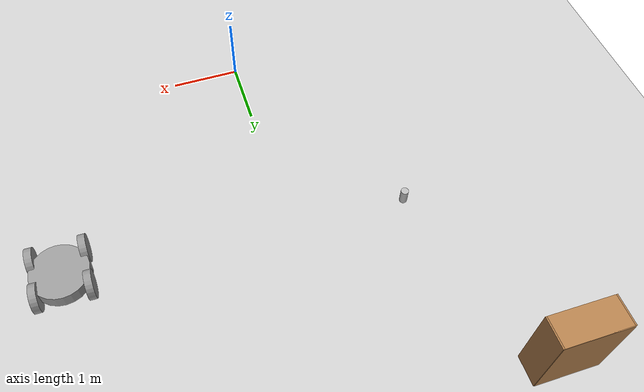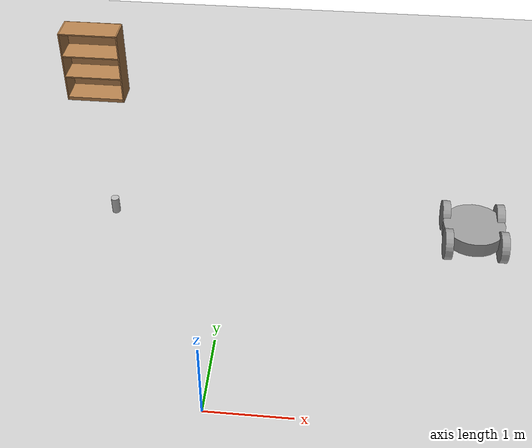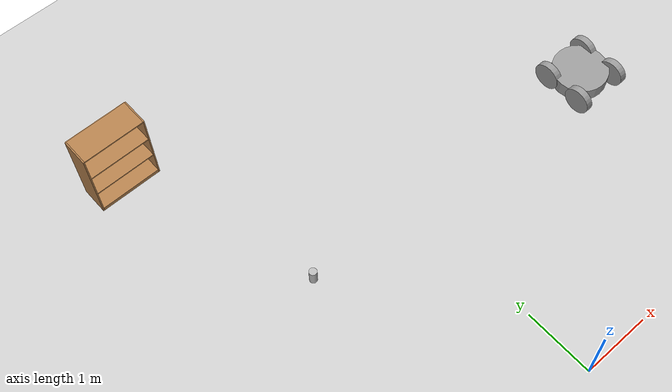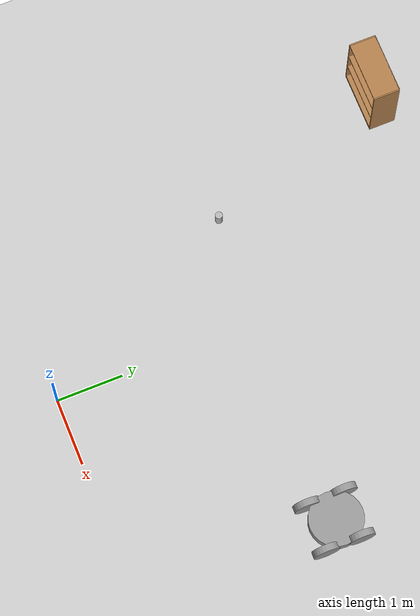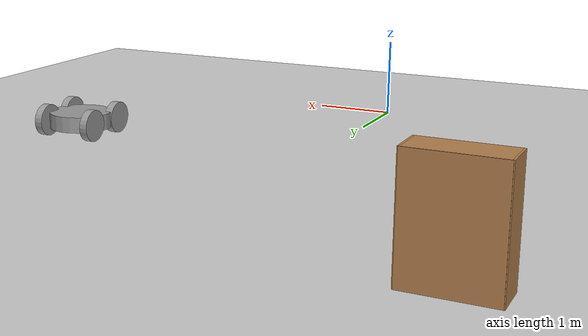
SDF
<sdf version="1.7">
 <world name="default">
  <model name="ground_plane">
   <static>1</static>
   <link name="link">
    <collision name="collision_collision">
     <geometry><plane><normal>0 0 1</normal><size>100 100</size></plane></geometry>
     <surface>
      <contact><collide_bitmask>65535</collide_bitmask></contact>
      <friction><ode><mu>100</mu><mu2>50</mu2></ode></friction>
     </surface>
    </collision>
    <visual name="visual_visual">
     <cast_shadows>0</cast_shadows>
     <geometry><plane><normal>0 0 1</normal><size>100 100</size></plane></geometry>
     <material>
      <script><uri>file://media/materials/scripts/gazebo.material</uri><name>Gazebo/Grey</name></script>
     </material>
    </visual>
   </link>
  </model>
  <model name="bookshelf">
   <static>1</static>
   <link name="link">
    <inertial><mass>1</mass></inertial>
    <collision name="collision_back">
     <pose>0 0.005 0.6 0 -0 0</pose>
     <geometry><box><size>0.9 0.01 1.2</size></box></geometry>
    </collision>
    <visual name="visual_visual1">
     <pose>0 0.005 0.6 0 -0 0</pose>
     <geometry><box><size>0.9 0.01 1.2</size></box></geometry>
     <material>
      <script><uri>file://media/materials/scripts/gazebo.material</uri><name>Gazebo/Wood</name></script>
     </material>
    </visual>
    <collision name="collision_left_side">
     <pose>0.45 -0.195 0.6 0 -0 0</pose>
     <geometry><box><size>0.02 0.4 1.2</size></box></geometry>
    </collision>
    <visual name="visual_visual2">
     <pose>0.45 -0.195 0.6 0 -0 0</pose>
     <geometry><box><size>0.02 0.4 1.2</size></box></geometry>
     <material>
      <script><uri>file://media/materials/scripts/gazebo.material</uri><name>Gazebo/Wood</name></script>
     </material>
    </visual>
    <collision name="collision_right_side">
     <pose>-0.45 -0.195 0.6 0 -0 0</pose>
     <geometry><box><size>0.02 0.4 1.2</size></box></geometry>
    </collision>
    <visual name="visual_visual3">
     <pose>-0.45 -0.195 0.6 0 -0 0</pose>
     <geometry><box><size>0.02 0.4 1.2</size></box></geometry>
     <material>
      <script><uri>file://media/materials/scripts/gazebo.material</uri><name>Gazebo/Wood</name></script>
     </material>
    </visual>
    <collision name="collision_bottom">
     <pose>0 -0.195 0.03 0 -0 0</pose>
     <geometry><box><size>0.88 0.4 0.06</size></box></geometry>
    </collision>
    <visual name="visual_visual4">
     <pose>0 -0.195 0.03 0 -0 0</pose>
     <geometry><box><size>0.88 0.4 0.06</size></box></geometry>
     <material>
      <script><uri>file://media/materials/scripts/gazebo.material</uri><name>Gazebo/Wood</name></script>
     </material>
    </visual>
    <collision name="collision_top">
     <pose>0 -0.195 1.19 0 -0 0</pose>
     <geometry><box><size>0.88 0.4 0.02</size></box></geometry>
    </collision>
    <visual name="visual_visual5">
     <pose>0 -0.195 1.19 0 -0 0</pose>
     <geometry><box><size>0.88 0.4 0.02</size></box></geometry>
     <material>
      <script><uri>file://media/materials/scripts/gazebo.material</uri><name>Gazebo/Wood</name></script>
     </material>
    </visual>
    <collision name="collision_low_shelf">
     <pose>0 -0.195 0.43 0 -0 0</pose>
     <geometry><box><size>0.88 0.4 0.02</size></box></geometry>
    </collision>
    <visual name="visual_visual6">
     <pose>0 -0.195 0.43 0 -0 0</pose>
     <geometry><box><size>0.88 0.4 0.02</size></box></geometry>
     <material>
      <script><uri>file://media/materials/scripts/gazebo.material</uri><name>Gazebo/Wood</name></script>
     </material>
    </visual>
    <collision name="collision_high_shelf">
     <pose>0 -0.195 0.8 0 -0 0</pose>
     <geometry><box><size>0.88 0.4 0.02</size></box></geometry>
    </collision>
    <visual name="visual_visual7">
     <pose>0 -0.195 0.8 0 -0 0</pose>
     <geometry><box><size>0.88 0.4 0.02</size></box></geometry>
     <material>
      <script><uri>file://media/materials/scripts/gazebo.material</uri><name>Gazebo/Wood</name></script>
     </material>
    </visual>
   </link>
   <pose>-2.61093 6.16399 0 0 -0 0</pose>
  </model>
  <model name="beer">
   <link name="link">
    <pose>0 0 0.115 0 -0 0</pose>
    <inertial>
     <mass>0.39</mass>
     <inertia><ixx>0.00058</ixx><ixy>0</ixy><ixz>0</ixz><iyy>0.00058</iyy><iyz>0</iyz><izz>0.00019</izz></inertia>
    </inertial>
    <collision name="collision_collision">
     <geometry><cylinder><radius>0.055</radius><length>0.23</length></cylinder></geometry>
    </collision>
    <visual name="visual_visual">
     <geometry><cylinder><radius>0.055</radius><length>0.23</length></cylinder></geometry>
     <material>
      <script>
       <uri>model://beer/materials/scripts</uri>
       <uri>model://beer/materials/textures</uri>
       <name>Beer/Diffuse</name>
      </script>
     </material>
    </visual>
   </link>
   <pose>-1.67 3.16597 -0 0 -0 -0.000107</pose>
  </model>
  <model name="robot2">
   <link name="link_0">
    <inertial>
     <mass>1</mass>
     <inertia><ixx>0.145833</ixx><ixy>0</ixy><ixz>0</ixz><iyy>0.145833</iyy><iyz>0</iyz><izz>0.125</izz></inertia>
    </inertial>
    <pose>-0 0.020098 0 0 -0 0</pose>
    <visual name="visual">
     <geometry><cylinder><radius>0.4</radius><length>0.2</length></cylinder></geometry>
     <material>
      <lighting>1</lighting>
      <script><uri>file://media/materials/scripts/gazebo.material</uri><name>Gazebo/Grey</name></script>
      <shader type="pixel"><normal_map>__default__</normal_map></shader>
      <ambient>0.3 0.3 0.3 1</ambient>
      <diffuse>0.7 0.7 0.7 1</diffuse>
      <specular>0.01 0.01 0.01 1</specular>
      <emissive>0 0 0 1</emissive>
     </material>
    </visual>
    <collision name="collision">
     <geometry><cylinder><radius>0.4</radius><length>0.2</length></cylinder></geometry>
     <surface>
      <friction>
       <ode><mu>1</mu><mu2>1</mu2><fdir1>0 0 0</fdir1><slip1>0</slip1><slip2>0</slip2></ode>
       <torsional>
        <coefficient>1</coefficient>
        <patch_radius>0</patch_radius>
        <surface_radius>0</surface_radius>
        <use_patch_radius>1</use_patch_radius>
        <ode><slip>0</slip></ode>
       </torsional>
      </friction>
      <bounce><restitution_coefficient>0</restitution_coefficient><threshold>1e+06</threshold></bounce>
      <contact>
       <collide_without_contact>0</collide_without_contact>
       <collide_without_contact_bitmask>1</collide_without_contact_bitmask>
       <collide_bitmask>1</collide_bitmask>
       <ode>
        <soft_cfm>0</soft_cfm>
        <soft_erp>0.2</soft_erp>
        <kp>1e+13</kp>
        <kd>1</kd>
        <max_vel>0.01</max_vel>
        <min_depth>0</min_depth>
       </ode>
       <bullet>
        <split_impulse>1</split_impulse>
        <split_impulse_penetration_threshold>-0.01</split_impulse_penetration_threshold>
        <soft_cfm>0</soft_cfm>
        <soft_erp>0.2</soft_erp>
        <kp>1e+13</kp>
        <kd>1</kd>
       </bullet>
      </contact>
     </surface>
    </collision>
   </link>
   <link name="link_1">
    <inertial>
     <mass>1</mass>
     <inertia><ixx>0.145833</ixx><ixy>0</ixy><ixz>0</ixz><iyy>0.145833</iyy><iyz>0</iyz><izz>0.125</izz></inertia>
    </inertial>
    <pose>-0.34992 0.280098 0 0 -0 0</pose>
    <visual name="visual">
     <pose>0 0 0 0 1.57 0</pose>
     <geometry><cylinder><radius>0.2</radius><length>0.1</length></cylinder></geometry>
     <material>
      <lighting>1</lighting>
      <script><uri>file://media/materials/scripts/gazebo.material</uri><name>Gazebo/Grey</name></script>
      <shader type="pixel"><normal_map>__default__</normal_map></shader>
      <ambient>0.3 0.3 0.3 1</ambient>
      <diffuse>0.7 0.7 0.7 1</diffuse>
      <specular>0.01 0.01 0.01 1</specular>
      <emissive>0 0 0 1</emissive>
     </material>
    </visual>
    <collision name="collision">
     <pose>0 0 0 0 1.57 0</pose>
     <geometry><cylinder><radius>0.2</radius><length>0.1</length></cylinder></geometry>
     <surface>
      <friction>
       <ode><mu>1</mu><mu2>1</mu2><fdir1>0 0 0</fdir1><slip1>0</slip1><slip2>0</slip2></ode>
       <torsional>
        <coefficient>1</coefficient>
        <patch_radius>0</patch_radius>
        <surface_radius>0</surface_radius>
        <use_patch_radius>1</use_patch_radius>
        <ode><slip>0</slip></ode>
       </torsional>
      </friction>
      <bounce><restitution_coefficient>0</restitution_coefficient><threshold>1e+06</threshold></bounce>
      <contact>
       <collide_without_contact>0</collide_without_contact>
       <collide_without_contact_bitmask>1</collide_without_contact_bitmask>
       <collide_bitmask>1</collide_bitmask>
       <ode>
        <soft_cfm>0</soft_cfm>
        <soft_erp>0.2</soft_erp>
        <kp>1e+13</kp>
        <kd>1</kd>
        <max_vel>0.01</max_vel>
        <min_depth>0</min_depth>
       </ode>
       <bullet>
        <split_impulse>1</split_impulse>
        <split_impulse_penetration_threshold>-0.01</split_impulse_penetration_threshold>
        <soft_cfm>0</soft_cfm>
        <soft_erp>0.2</soft_erp>
        <kp>1e+13</kp>
        <kd>1</kd>
       </bullet>
      </contact>
     </surface>
    </collision>
   </link>
   <link name="link_1_clone">
    <inertial>
     <mass>1</mass>
     <inertia><ixx>0.145833</ixx><ixy>0</ixy><ixz>0</ixz><iyy>0.145833</iyy><iyz>0</iyz><izz>0.125</izz></inertia>
    </inertial>
    <pose>-0.34992 -0.279902 0 0 -0 0</pose>
    <visual name="visual">
     <pose>0 0 0 0 1.57 0</pose>
     <geometry><cylinder><radius>0.2</radius><length>0.1</length></cylinder></geometry>
     <material>
      <lighting>1</lighting>
      <script><uri>file://media/materials/scripts/gazebo.material</uri><name>Gazebo/Grey</name></script>
      <shader type="pixel"><normal_map>__default__</normal_map></shader>
      <ambient>0.3 0.3 0.3 1</ambient>
      <diffuse>0.7 0.7 0.7 1</diffuse>
      <specular>0.01 0.01 0.01 1</specular>
      <emissive>0 0 0 1</emissive>
     </material>
    </visual>
    <collision name="collision">
     <pose>0 0 0 0 1.57 0</pose>
     <geometry><cylinder><radius>0.2</radius><length>0.1</length></cylinder></geometry>
     <surface>
      <friction>
       <ode><mu>1</mu><mu2>1</mu2><fdir1>0 0 0</fdir1><slip1>0</slip1><slip2>0</slip2></ode>
       <torsional>
        <coefficient>1</coefficient>
        <patch_radius>0</patch_radius>
        <surface_radius>0</surface_radius>
        <use_patch_radius>1</use_patch_radius>
        <ode><slip>0</slip></ode>
       </torsional>
      </friction>
      <bounce><restitution_coefficient>0</restitution_coefficient><threshold>1e+06</threshold></bounce>
      <contact>
       <collide_without_contact>0</collide_without_contact>
       <collide_without_contact_bitmask>1</collide_without_contact_bitmask>
       <collide_bitmask>1</collide_bitmask>
       <ode>
        <soft_cfm>0</soft_cfm>
        <soft_erp>0.2</soft_erp>
        <kp>1e+13</kp>
        <kd>1</kd>
        <max_vel>0.01</max_vel>
        <min_depth>0</min_depth>
       </ode>
       <bullet>
        <split_impulse>1</split_impulse>
        <split_impulse_penetration_threshold>-0.01</split_impulse_penetration_threshold>
        <soft_cfm>0</soft_cfm>
        <soft_erp>0.2</soft_erp>
        <kp>1e+13</kp>
        <kd>1</kd>
       </bullet>
      </contact>
     </surface>
    </collision>
   </link>
   <link name="link_1_clone_0">
    <inertial>
     <mass>1</mass>
     <inertia><ixx>0.145833</ixx><ixy>0</ixy><ixz>0</ixz><iyy>0.145833</iyy><iyz>0</iyz><izz>0.125</izz></inertia>
    </inertial>
    <pose>0.34992 0.259608 0 0 -0 0</pose>
    <visual name="visual">
     <pose>0 0 0 0 1.57 0</pose>
     <geometry><cylinder><radius>0.2</radius><length>0.1</length></cylinder></geometry>
     <material>
      <lighting>1</lighting>
      <script><uri>file://media/materials/scripts/gazebo.material</uri><name>Gazebo/Grey</name></script>
      <shader type="pixel"><normal_map>__default__</normal_map></shader>
      <ambient>0.3 0.3 0.3 1</ambient>
      <diffuse>0.7 0.7 0.7 1</diffuse>
      <specular>0.01 0.01 0.01 1</specular>
      <emissive>0 0 0 1</emissive>
     </material>
    </visual>
    <collision name="collision">
     <pose>0 0 0 0 1.57 0</pose>
     <geometry><cylinder><radius>0.2</radius><length>0.1</length></cylinder></geometry>
     <surface>
      <friction>
       <ode><mu>1</mu><mu2>1</mu2><fdir1>0 0 0</fdir1><slip1>0</slip1><slip2>0</slip2></ode>
       <torsional>
        <coefficient>1</coefficient>
        <patch_radius>0</patch_radius>
        <surface_radius>0</surface_radius>
        <use_patch_radius>1</use_patch_radius>
        <ode><slip>0</slip></ode>
       </torsional>
      </friction>
      <bounce><restitution_coefficient>0</restitution_coefficient><threshold>1e+06</threshold></bounce>
      <contact>
       <collide_without_contact>0</collide_without_contact>
       <collide_without_contact_bitmask>1</collide_without_contact_bitmask>
       <collide_bitmask>1</collide_bitmask>
       <ode>
        <soft_cfm>0</soft_cfm>
        <soft_erp>0.2</soft_erp>
        <kp>1e+13</kp>
        <kd>1</kd>
        <max_vel>0.01</max_vel>
        <min_depth>0</min_depth>
       </ode>
       <bullet>
        <split_impulse>1</split_impulse>
        <split_impulse_penetration_threshold>-0.01</split_impulse_penetration_threshold>
        <soft_cfm>0</soft_cfm>
        <soft_erp>0.2</soft_erp>
        <kp>1e+13</kp>
        <kd>1</kd>
       </bullet>
      </contact>
     </surface>
    </collision>
   </link>
   <link name="link_1_clone_1">
    <inertial>
     <mass>1</mass>
     <inertia><ixx>0.145833</ixx><ixy>0</ixy><ixz>0</ixz><iyy>0.145833</iyy><iyz>0</iyz><izz>0.125</izz></inertia>
    </inertial>
    <pose>0.34992 -0.279902 0 0 -0 0</pose>
    <visual name="visual">
     <pose>0 0 0 0 1.57 0</pose>
     <geometry><cylinder><radius>0.2</radius><length>0.1</length></cylinder></geometry>
     <material>
      <lighting>1</lighting>
      <script><uri>file://media/materials/scripts/gazebo.material</uri><name>Gazebo/Grey</name></script>
      <shader type="pixel"><normal_map>__default__</normal_map></shader>
      <ambient>0.3 0.3 0.3 1</ambient>
      <diffuse>0.7 0.7 0.7 1</diffuse>
      <specular>0.01 0.01 0.01 1</specular>
      <emissive>0 0 0 1</emissive>
     </material>
    </visual>
    <collision name="collision">
     <pose>0 0 0 0 1.57 0</pose>
     <geometry><cylinder><radius>0.2</radius><length>0.1</length></cylinder></geometry>
     <surface>
      <friction>
       <ode><mu>1</mu><mu2>1</mu2><fdir1>0 0 0</fdir1><slip1>0</slip1><slip2>0</slip2></ode>
       <torsional>
        <coefficient>1</coefficient>
        <patch_radius>0</patch_radius>
        <surface_radius>0</surface_radius>
        <use_patch_radius>1</use_patch_radius>
        <ode><slip>0</slip></ode>
       </torsional>
      </friction>
      <bounce><restitution_coefficient>0</restitution_coefficient><threshold>1e+06</threshold></bounce>
      <contact>
       <collide_without_contact>0</collide_without_contact>
       <collide_without_contact_bitmask>1</collide_without_contact_bitmask>
       <collide_bitmask>1</collide_bitmask>
       <ode>
        <soft_cfm>0</soft_cfm>
        <soft_erp>0.2</soft_erp>
        <kp>1e+13</kp>
        <kd>1</kd>
        <max_vel>0.01</max_vel>
        <min_depth>0</min_depth>
       </ode>
       <bullet>
        <split_impulse>1</split_impulse>
        <split_impulse_penetration_threshold>-0.01</split_impulse_penetration_threshold>
        <soft_cfm>0</soft_cfm>
        <soft_erp>0.2</soft_erp>
        <kp>1e+13</kp>
        <kd>1</kd>
       </bullet>
      </contact>
     </surface>
    </collision>
   </link>
   <joint name="link_0_JOINT_0" type="revolute">
    <parent>link_0</parent>
    <child>link_1</child>
    <axis>
     <xyz>1 0 0</xyz>
     <limit>
      <lower>-1.79769e+308</lower>
      <upper>1.79769e+308</upper>
      <effort>-1</effort>
      <velocity>-1</velocity>
     </limit>
     <dynamics>
      <spring_reference>0</spring_reference>
      <spring_stiffness>0</spring_stiffness>
      <damping>0</damping>
     </dynamics>
    </axis>
    <physics>
     <ode><limit><cfm>0</cfm><erp>0.2</erp></limit><suspension><cfm>0</cfm><erp>0.2</erp></suspension></ode>
    </physics>
   </joint>
   <joint name="link_0_JOINT_1" type="revolute">
    <parent>link_0</parent>
    <child>link_1_clone</child>
    <axis>
     <xyz>1 0 0</xyz>
     <limit>
      <lower>-1.79769e+308</lower>
      <upper>1.79769e+308</upper>
      <effort>-1</effort>
      <velocity>-1</velocity>
     </limit>
     <dynamics>
      <spring_reference>0</spring_reference>
      <spring_stiffness>0</spring_stiffness>
      <damping>0</damping>
     </dynamics>
    </axis>
    <physics>
     <ode><limit><cfm>0</cfm><erp>0.2</erp></limit><suspension><cfm>0</cfm><erp>0.2</erp></suspension></ode>
    </physics>
   </joint>
   <joint name="link_0_JOINT_2" type="revolute">
    <parent>link_0</parent>
    <child>link_1_clone_0</child>
    <axis>
     <xyz>1 0 0</xyz>
     <limit>
      <lower>-1.79769e+308</lower>
      <upper>1.79769e+308</upper>
      <effort>-1</effort>
      <velocity>-1</velocity>
     </limit>
     <dynamics>
      <spring_reference>0</spring_reference>
      <spring_stiffness>0</spring_stiffness>
      <damping>0</damping>
     </dynamics>
    </axis>
    <physics>
     <ode><limit><cfm>0</cfm><erp>0.2</erp></limit><suspension><cfm>0</cfm><erp>0.2</erp></suspension></ode>
    </physics>
   </joint>
   <joint name="link_0_JOINT_3" type="revolute">
    <parent>link_0</parent>
    <child>link_1_clone_1</child>
    <axis>
     <xyz>1 0 0</xyz>
     <limit>
      <lower>-1.79769e+308</lower>
      <upper>1.79769e+308</upper>
      <effort>-1</effort>
      <velocity>-1</velocity>
     </limit>
     <dynamics>
      <spring_reference>0</spring_reference>
      <spring_stiffness>0</spring_stiffness>
      <damping>0</damping>
     </dynamics>
    </axis>
    <physics>
     <ode><limit><cfm>0</cfm><erp>0.2</erp></limit><suspension><cfm>0</cfm><erp>0.2</erp></suspension></ode>
    </physics>
   </joint>
   <static>0</static>
   <pose>3.12148 2.99238 0.200036 -0 -8e-06 0.001916</pose>
  </model>
 </world>
</sdf>
